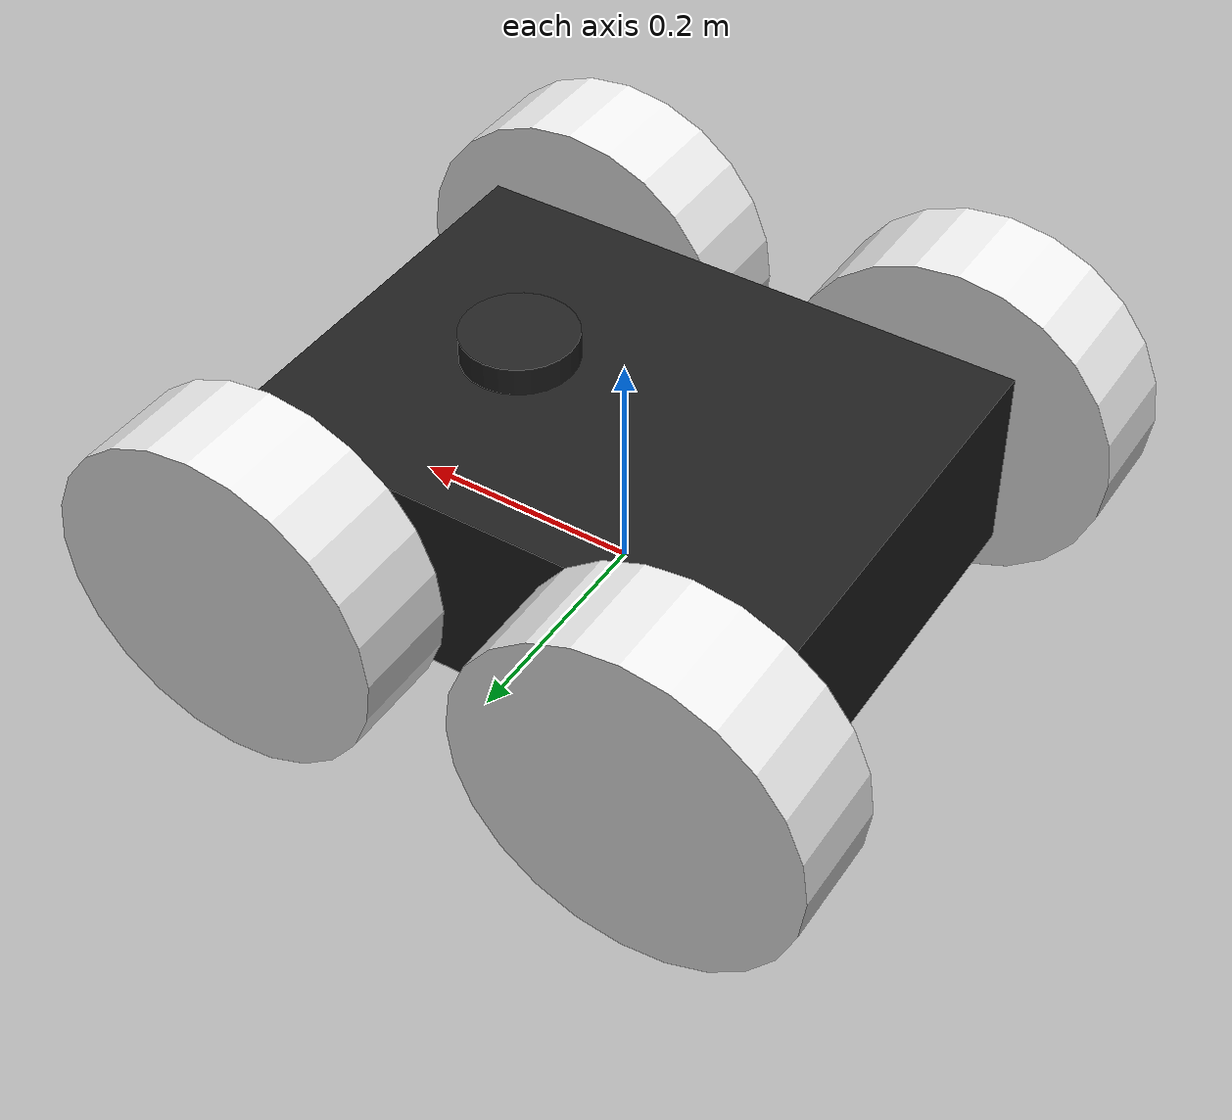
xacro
<?xml version="1.0"?>
<!-- Basic differential drive mobile base -->
<robot xmlns:xacro="http://www.ros.org/wiki/xacro" name="diffdrive_robot">
  <xacro:arg name="prefix" default="" />
  <xacro:arg name="use_mock_hardware" default="false" />

  <xacro:include filename="$(find ros2_control_demo_description)/diffbot/urdf/diffbot_description.urdf.xacro" />
  <xacro:include filename="$(find ros2_control_demo_description)/diffbot/urdf/lidar.xacro" />

  <!-- Import Rviz colors -->
  <xacro:include filename="$(find ros2_control_demo_description)/diffbot/urdf/diffbot.materials.xacro" />

  <!-- Import diffbot ros2_control description -->
  <xacro:include filename="$(find ros2_control_demo_example_2)/ros2_control/diffbot.ros2_control.xacro" />

  <xacro:diffbot prefix="$(arg prefix)" />

  <xacro:diffbot_ros2_control
    name="DiffBot" prefix="$(arg prefix)" use_mock_hardware="$(arg use_mock_hardware)"/>

</robot>

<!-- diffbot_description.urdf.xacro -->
<robot xmlns:xacro="http://www.ros.org/wiki/xacro">

  <xacro:macro name="diffbot" params="prefix">

  <!-- Constants for robot dimensions -->
  <xacro:property name="PI" value="3.1415926535897931"/>
  <xacro:property name="base_mass" value="18" /> <!-- arbitrary value for base mass -->
  <xacro:property name="base_width" value="0.5" />
  <xacro:property name="base_length" value="0.37" />
  <xacro:property name="base_height" value="0.17" />
  <xacro:property name="wheel_mass" value="1" /> <!-- arbitrary value for wheel mass -->
  <xacro:property name="wheel_len" value="0.095" />
  <xacro:property name="wheel_radius" value="0.15" />
  <xacro:property name="caster_wheel_mass" value="0.1" /> <!-- arbitrary value for caster wheel mass -->
  <xacro:property name="caster_wheel_radius" value="0.015" />
  <xacro:property name="z_offset" value="${base_height/2}" /> <!-- Space btw top of beam and the each joint -->

  <!-- Base Link -->
  <link name="${prefix}base_link">
    <collision>
      <origin xyz="0 0 0" rpy="0 0 0"/>
      <geometry>
        <box size="${base_width} ${base_length} ${base_height}"/>
      </geometry>
    </collision>

    <visual>
      <origin xyz="0 0 ${base_height/2}" rpy="0 0 0"/>
      <geometry>
        <box size="${base_width} ${base_length} ${base_height}"/>
      </geometry>
      <material name="black"/>
    </visual>

    <inertial>
      <origin xyz="0 0 0" rpy="0 0 0"/>
      <mass value="${base_mass}"/>
      <inertia
        ixx="${base_mass / 12.0 * (base_length*base_length + base_height*base_height)}" ixy="0.0" ixz="0.0"
        iyy="${base_mass / 12.0 * (base_height*base_height + base_width*base_width)}" iyz="0.0"
        izz="${base_mass / 12.0 * (base_width*base_width + base_length*base_length)}"/>
      </inertial>
    </link>

    <joint name="${prefix}left_front_wheel_joint" type="continuous">
      <parent link="${prefix}base_link"/>
      <child link="${prefix}left_front_wheel"/>
      <origin xyz="-${base_length/2} -${base_width/2} ${z_offset}" rpy="0 0 0"/>
      <axis xyz="0 1 0"/>
      <dynamics damping="0.2"/>
      <limit effort="100" velocity="1.0"/>
    </joint>

    <!-- left front wheel Link -->
    <link name="${prefix}left_front_wheel">
      <collision>
        <origin xyz="0 0 0" rpy="${PI/2} 0 0"/>
        <geometry>
          <cylinder length="${wheel_len}" radius="${wheel_radius}"/>
        </geometry>
      </collision>

      <visual>
        <origin xyz="0 0 0" rpy="${PI/2} 0 0"/>
        <geometry>
          <cylinder length="${wheel_len}" radius="${wheel_radius}"/>
        </geometry>
        <material name="white"/>
      </visual>

      <inertial>
        <origin xyz="0 0 0" rpy="${PI/2} 0 0"/>
        <mass value="${wheel_mass}"/>
        <inertia
          ixx="${wheel_mass / 12.0 * (3*wheel_radius*wheel_radius + wheel_len*wheel_len)}" ixy="0.0" ixz="0.0"
          iyy="${wheel_mass / 12.0 * (3*wheel_radius*wheel_radius + wheel_len*wheel_len)}" iyz="0.0"
          izz="${wheel_mass / 2.0 * wheel_radius*wheel_radius}"/>
        </inertial>
      </link>

    <joint name="${prefix}right_front_wheel_joint" type="continuous">
      <parent link="${prefix}base_link"/>
      <child link="${prefix}right_front_wheel"/>
      <origin xyz="${base_length/2} -${base_width/2} ${z_offset}" rpy="0 0 0"/>
      <axis xyz="0 1 0"/>
      <dynamics damping="0.2"/>
      <limit effort="100" velocity="1.0"/>
    </joint>

    <!-- right front wheel Link -->
    <link name="${prefix}right_front_wheel">
      <collision>
        <origin xyz="0 0 0" rpy="${PI/2} 0 0"/>
        <geometry>
          <cylinder length="${wheel_len}" radius="${wheel_radius}"/>
        </geometry>
      </collision>

      <visual>
        <origin xyz="0 0 0" rpy="${PI/2} 0 0"/>
        <geometry>
          <cylinder length="${wheel_len}" radius="${wheel_radius}"/>
        </geometry>
        <material name="white"/>
      </visual>

      <inertial>
        <origin xyz="0 0 0" rpy="${PI/2} 0 0"/>
        <mass value="${wheel_mass}"/>
        <inertia
          ixx="${wheel_mass / 12.0 * (3*wheel_radius*wheel_radius + wheel_len*wheel_len)}" ixy="0.0" ixz="0.0"
          iyy="${wheel_mass / 12.0 * (3*wheel_radius*wheel_radius + wheel_len*wheel_len)}" iyz="0.0"
          izz="${wheel_mass / 2.0 * wheel_radius*wheel_radius}"/>
        </inertial>
      </link>

    <joint name="${prefix}right_rear_wheel_joint" type="continuous">
      <parent link="${prefix}base_link"/>
      <child link="${prefix}right_rear_wheel"/>
      <origin xyz="${base_length/2} ${base_width/2} ${z_offset}" rpy="0 0 0"/>
      <axis xyz="0 1 0"/>
      <dynamics damping="0.2"/>
      <limit effort="100" velocity="1.0"/>
    </joint>

    <!-- right rear wheel Link -->
    <link name="${prefix}right_rear_wheel">
      <collision>
        <origin xyz="0 0 0" rpy="${PI/2} 0 0"/>
        <geometry>
          <cylinder length="${wheel_len}" radius="${wheel_radius}"/>
        </geometry>
      </collision>

      <visual>
        <origin xyz="0 0 0" rpy="${PI/2} 0 0"/>
        <geometry>
          <cylinder length="${wheel_len}" radius="${wheel_radius}"/>
        </geometry>
        <material name="white"/>
      </visual>

      <inertial>
        <origin xyz="0 0 0" rpy="${PI/2} 0 0"/>
        <mass value="${wheel_mass}"/>
        <inertia
          ixx="${wheel_mass / 12.0 * (3*wheel_radius*wheel_radius + wheel_len*wheel_len)}" ixy="0.0" ixz="0.0"
          iyy="${wheel_mass / 12.0 * (3*wheel_radius*wheel_radius + wheel_len*wheel_len)}" iyz="0.0"
          izz="${wheel_mass / 2.0 * wheel_radius*wheel_radius}"/>
        </inertial>
      </link>

    <joint name="${prefix}left_rear_wheel_joint" type="continuous">
      <parent link="${prefix}base_link"/>
      <child link="${prefix}left_rear_wheel"/>
      <origin xyz="-${base_length/2} ${base_width/2} ${z_offset}" rpy="0 0 0"/>
      <axis xyz="0 1 0"/>
      <dynamics damping="0.2"/>
      <limit effort="100" velocity="1.0"/>
    </joint>

    <!-- left rear wheel Link -->
    <link name="${prefix}left_rear_wheel">
      <collision>
        <origin xyz="0 0 0" rpy="${PI/2} 0 0"/>
        <geometry>
          <cylinder length="${wheel_len}" radius="${wheel_radius}"/>
        </geometry>
      </collision>

      <visual>
        <origin xyz="0 0 0" rpy="${PI/2} 0 0"/>
        <geometry>
          <cylinder length="${wheel_len}" radius="${wheel_radius}"/>
        </geometry>
        <material name="white"/>
      </visual>

      <inertial>
        <origin xyz="0 0 0" rpy="${PI/2} 0 0"/>
        <mass value="${wheel_mass}"/>
        <inertia
          ixx="${wheel_mass / 12.0 * (3*wheel_radius*wheel_radius + wheel_len*wheel_len)}" ixy="0.0" ixz="0.0"
          iyy="${wheel_mass / 12.0 * (3*wheel_radius*wheel_radius + wheel_len*wheel_len)}" iyz="0.0"
          izz="${wheel_mass / 2.0 * wheel_radius*wheel_radius}"/>
        </inertial>
      </link>

  </xacro:macro>

</robot>

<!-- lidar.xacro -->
<robot xmlns:xacro="http://www.ros.org/wiki/xacro" >
   <joint name="laser_joint" type="fixed">
     <parent link="base_link"/>
     <child link="laser_frame"/>
     <origin xyz="0.1 0 0.175" rpy="0 0 0"/>
   </joint>
   <link name="laser_frame">
      <visual>
         <origin xyz="0 0 0"/>
         <geometry>
            <cylinder length="0.04" radius="0.05"/>
         </geometry>
         <material name="laser_material">
            <color rgba="0.13 0.13 0.13 1.0"/>
         </material>
      </visual>
      <collision>
         <origin xyz="0 0 0"/>
         <geometry>
            <cylinder length="0.04" radius="0.05"/>
         </geometry>
      </collision>
   </link>

   <!-- 2D Lidar New Gazebo Sensor Plugin  -->
   <gazebo reference="laser_frame">
      <sensor name="laser" type="gpu_lidar">
         <pose> 0 0 0 0 0 0 </pose>
         <always_on>true</always_on>
         <visualize>true</visualize>
         <update_rate>10</update_rate>
         <topic>scan</topic>
         <gz_frame_id>laser_frame</gz_frame_id>
         <lidar>
            <scan>
               <horizontal>
               <samples>360</samples>
               <min_angle>-3.14</min_angle>
               <max_angle>3.14</max_angle>
               </horizontal>
            </scan>
            <range>
               <min>0.3</min>
               <max>12</max>
            </range>
         </lidar>
      </sensor>
   </gazebo>
</robot>
